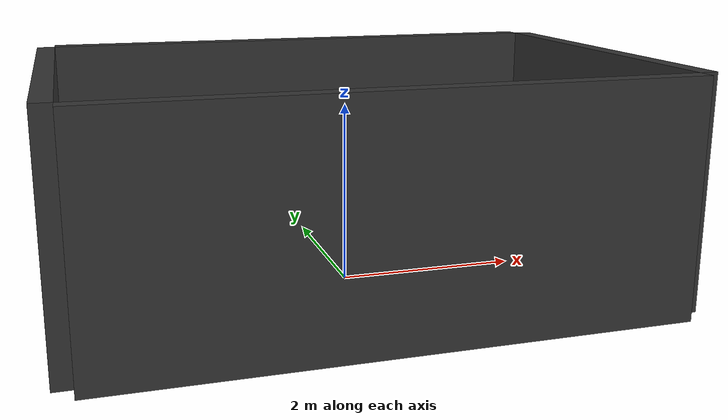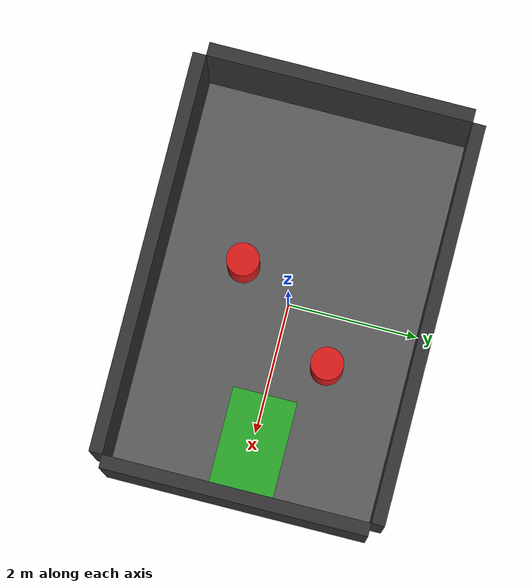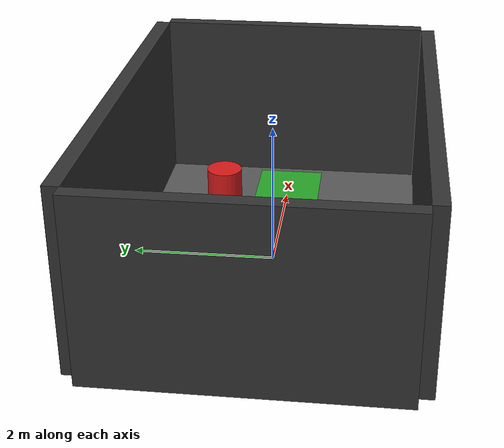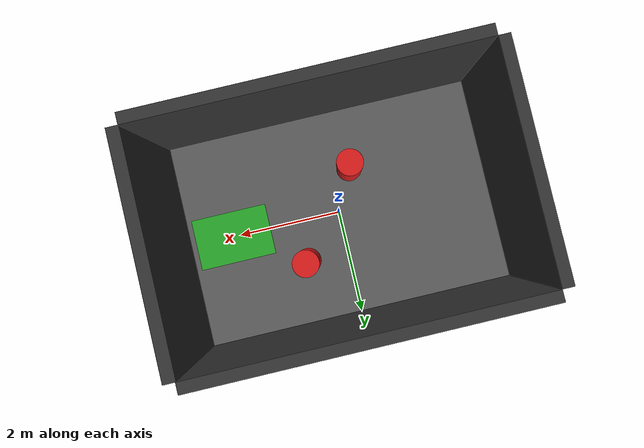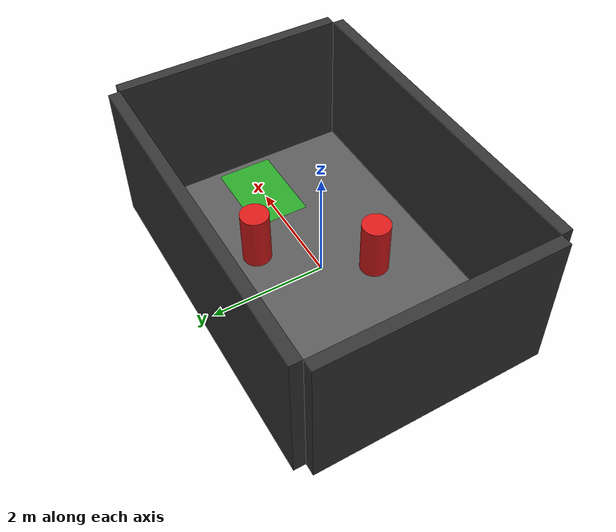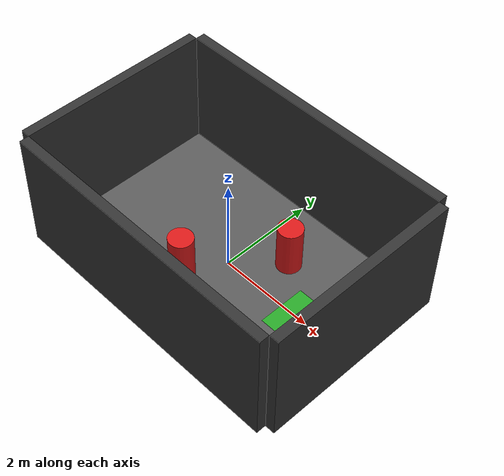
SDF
<?xml version="1.0"?>
<sdf version="1.10">
  <world name="robot_arena">

    <!-- Disable GUI grid and set a neutral background -->
    <scene>
      <grid>false</grid>
      <background>0.85 0.85 0.85 1</background>
    </scene>

    <!-- Sun only (no infinite ground) -->
    <include>
      <uri>https://fuel.gazebosim.org/1.0/OpenRobotics/models/Sun</uri>
    </include>

    <!-- Finite floor: just inside the walls to avoid z-fighting -->
    <model name="floor">
      <pose>0 0 -0.01 0 0 0</pose>  <!-- top surface at z = 0 -->
      <static>true</static>
      <link name="link">
        <collision name="collision">
          <geometry>
            <box><size>6.0 4.0 0.02</size></box>
          </geometry>
          <surface>
            <friction>
              <ode>
                <mu>1.2</mu>
                <mu2>1.2</mu2>
              </ode>
            </friction>
          </surface>
        </collision>
        <visual name="visual">
          <geometry>
            <box><size>6.0 4.0 0.02</size></box>
          </geometry>
          <material>
            <ambient>0.25 0.25 0.25 1</ambient>
            <diffuse>0.35 0.35 0.35 1</diffuse>
          </material>
        </visual>
      </link>
    </model>

    <!-- Left wall -->
    <model name="wall_left">
      <pose>-3.1 0 1.25 0 0 0</pose> <!-- position: x=-3, y=0, z=1.25 -->
      <static>true</static>
      <link name="link">
        <collision name="collision">
          <geometry>
            <box><size>0.2 4.0 2.5</size></box>
          </geometry>
        </collision>
        <visual name="visual">
          <geometry>
            <box><size>0.2 4.0 2.5</size></box>
          </geometry>
          <material>
            <ambient>0.1 0.1 0.1 1</ambient>
            <diffuse>0.2 0.2 0.2 1</diffuse>
          </material>
        </visual>
      </link>
    </model>

    <!-- Right wall -->
    <model name="wall_right">
      <pose>3.1 0 1.25 0 0 0</pose>
      <static>true</static>
      <link name="link">
        <collision name="collision">
          <geometry>
            <box><size>0.2 4.0 2.5</size></box>
          </geometry>
        </collision>
        <visual name="visual">
          <geometry>
            <box><size>0.2 4.0 2.5</size></box>
          </geometry>
          <material>
            <ambient>0.1 0.1 0.1 1</ambient>
            <diffuse>0.2 0.2 0.2 1</diffuse>
          </material>
        </visual>
      </link>
    </model>

    <!-- Back wall (negative Y) -->
    <model name="wall_back">
      <pose>0 -2.1 1.25 0 0 0</pose>
      <static>true</static>
      <link name="link">
        <collision name="collision">
          <geometry>
            <box><size>6.0 0.2 2.5</size></box>
          </geometry>
        </collision>
        <visual name="visual">
          <geometry>
            <box><size>6.0 0.2 2.5</size></box>
          </geometry>
          <material>
            <ambient>0.1 0.1 0.1 1</ambient>
            <diffuse>0.2 0.2 0.2 1</diffuse>
          </material>
        </visual>
      </link>
    </model>

    <!-- Front wall (positive Y) -->
    <model name="wall_front">
      <pose>0 2.1 1.25 0 0 0</pose>
      <static>true</static>
      <link name="link">
        <collision name="collision">
          <geometry>
            <box><size>6.0 0.2 2.5</size></box>
          </geometry>
        </collision>
        <visual name="visual">
          <geometry>
            <box><size>6.0 0.2 2.5</size></box>
          </geometry>
          <material>
            <ambient>0.1 0.1 0.1 1</ambient>
            <diffuse>0.2 0.2 0.2 1</diffuse>
          </material>
        </visual>
      </link>
    </model>

    <!-- Goal region -->
    <model name="goal_region">
      <pose>2.15 0 0.001 0 0 0</pose>
      <static>true</static>
      <link name="link">
        <collision name="goal_collision">
          <geometry>
          <box><size>1.5 1.0 0.002</size></box>
          </geometry>
        </collision>
        <visual name="goal_visual">
          <geometry><box><size>1.5 1.0 0.002</size></box></geometry>
          <material>
            <ambient>0.05 0.25 0.05 1</ambient>
            <diffuse>0.10 0.85 0.10 1</diffuse>
          </material>
          <transparency>0.35</transparency>
          <cast_shadows>false</cast_shadows>
        </visual>
        <sensor name="goal_sensor" type="contact">
          <always_on>true</always_on>
          <update_rate>20</update_rate>
          <contact><collision>goal_collision</collision></contact>
          <visualize>false</visualize>
        </sensor>
      </link>
    </model>

    <!-- Obstacle 1: upper cylinder -->
    <model name="obstacle_upper">
      <pose>0.8 0.8 0.5 0 0 0</pose>
      <static>true</static>
      <link name="link">
        <collision name="collision">
          <geometry>
            <cylinder><radius>0.25</radius><length>1.0</length></cylinder>
          </geometry>
        </collision>
        <visual name="visual">
          <geometry>
            <cylinder><radius>0.25</radius><length>1.0</length></cylinder>
          </geometry>
          <material>
            <ambient>0.25 0.05 0.05 1</ambient>
            <diffuse>0.85 0.10 0.10 1</diffuse>
          </material>
        </visual>
      </link>
    </model>

    <!-- Obstacle 2: lower cylinder -->
    <model name="obstacle_lower">
      <pose>-0.4 -0.8 0.5 0 0 0</pose>
      <static>true</static>
      <link name="link">
        <collision name="collision">
          <geometry>
            <cylinder><radius>0.25</radius><length>1.0</length></cylinder>
          </geometry>
        </collision>
        <visual name="visual">
          <geometry>
            <cylinder><radius>0.25</radius><length>1.0</length></cylinder>
          </geometry>
          <material>
            <ambient>0.25 0.05 0.05 1</ambient>
            <diffuse>0.85 0.10 0.10 1</diffuse>
          </material>
        </visual>
      </link>
    </model>

  </world>
</sdf>
